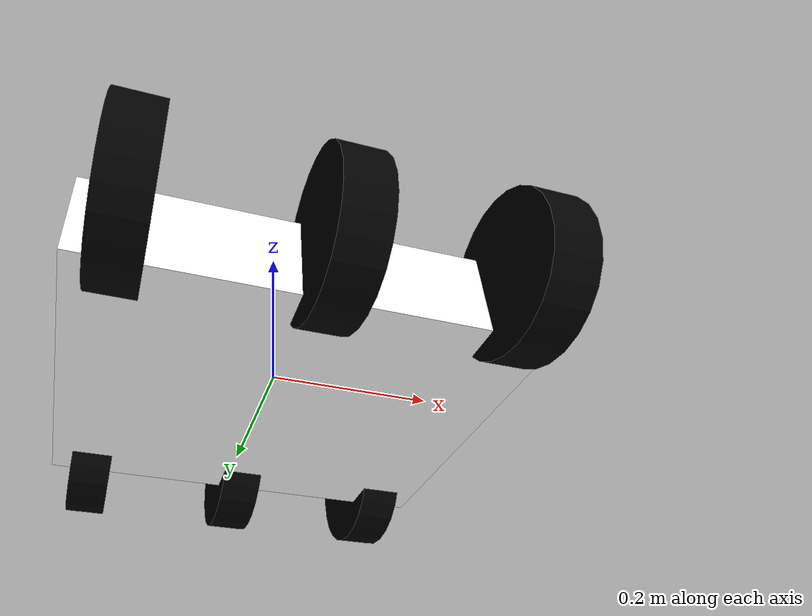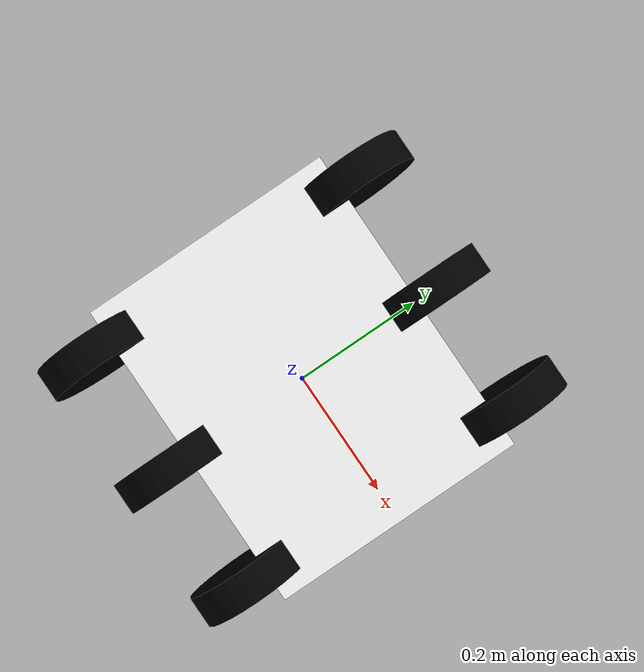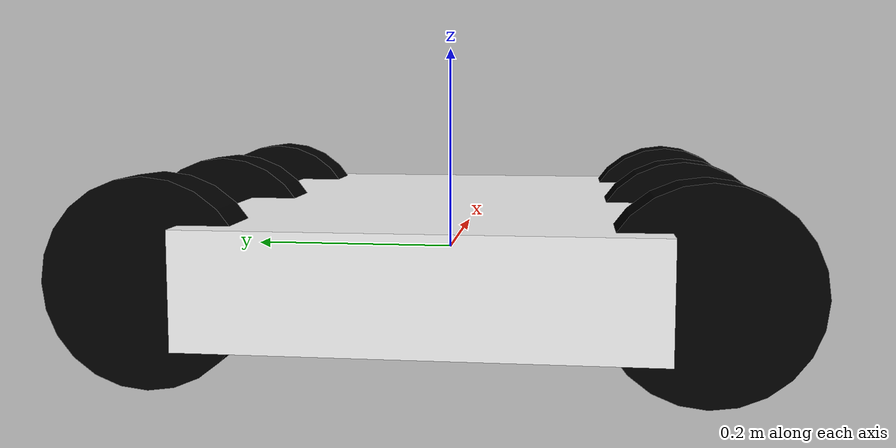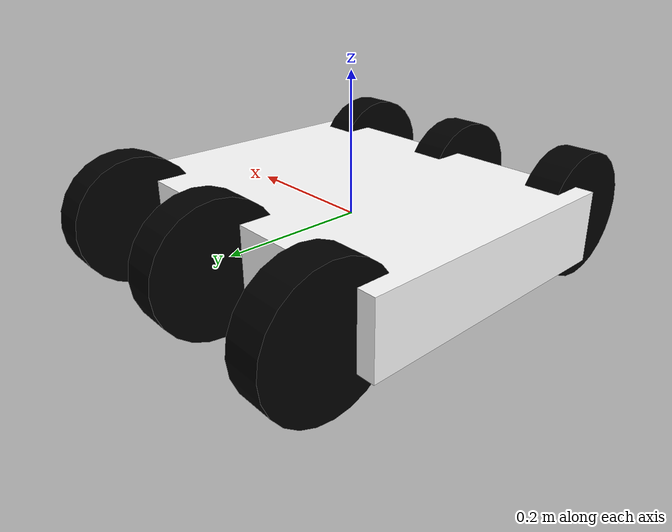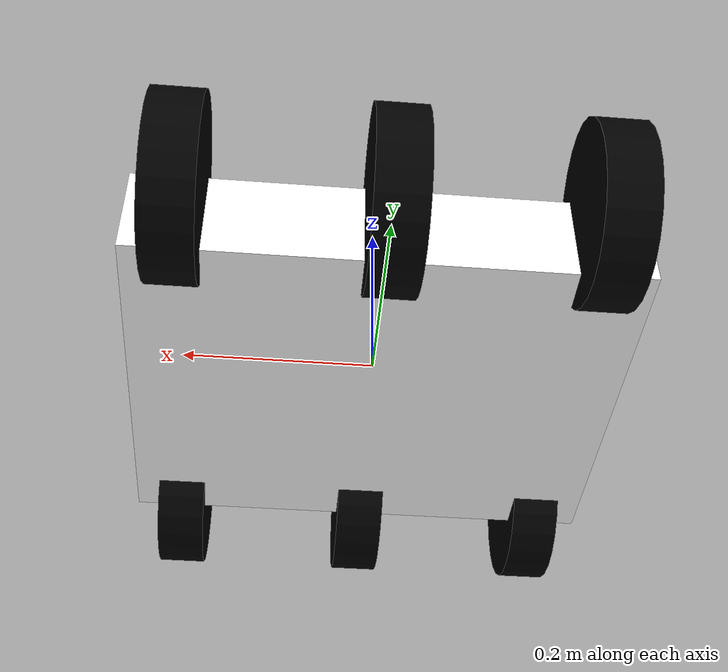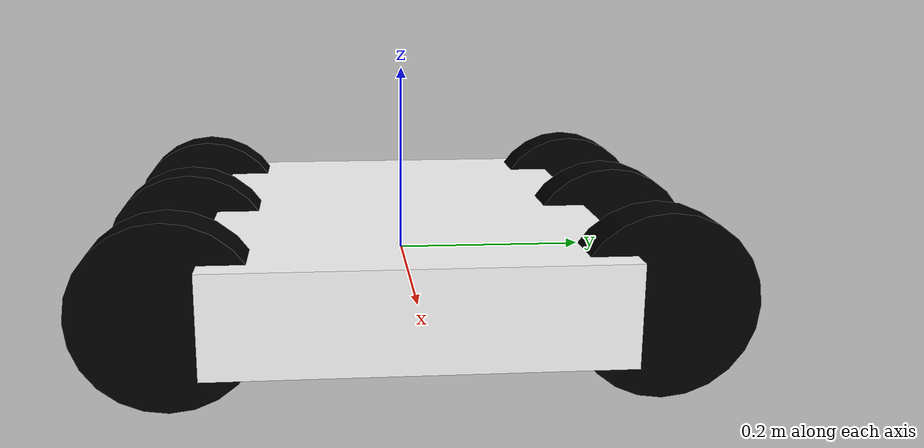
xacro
<?xml version="1.0"?>
<robot xmlns:xacro="http://www.ros.org/wiki/xacro" name="protobot">
    <!-- Includes files to build the robot -->
    <xacro:include filename="Base.urdf.xacro" />
    <xacro:include filename="Wheel.urdf.xacro" />
    <xacro:include filename="material.xacro" />

    <!-- Wheel Origin Values -->
    <xacro:property name="LeftWheelXOrigin" value="-.23"/>
    <xacro:property name="RightWheelXOrigin" value=".23"/>

    <xacro:property name="BackWheelYOrigin" value="-.2"/>
    <xacro:property name="MiddleWheelYOrigin" value="0"/>
    <xacro:property name="FrontWheelYOrigin" value=".2"/>

    <xacro:property name="wheelMass" value="1"/>

    <xacro:property name="baseMass" value="1"/>

    <!-- Base of the robot -->
    <xacro:base name="base" mass="${baseMass}"/>

    <!-- Left Side of the wheels -->
    <xacro:wheel name="wheel_Left_Front"  mass="${wheelMass}" parentLink="base_link" WheelXOrigin="${FrontWheelYOrigin}" WheelYOrigin="${LeftWheelXOrigin}"/>
    <xacro:wheel name="wheel_Left_Middle" mass="${wheelMass}" parentLink="base_link" WheelXOrigin="${MiddleWheelYOrigin}" WheelYOrigin="${LeftWheelXOrigin}"/>
    <xacro:wheel name="wheel_Left_Back" mass="${wheelMass}" parentLink="base_link" WheelXOrigin="${BackWheelYOrigin}" WheelYOrigin="${LeftWheelXOrigin}"/>

    <!-- Right Side of the wheels -->
    <xacro:wheel name="wheel_Right_Front" mass="${wheelMass}" parentLink="base_link" WheelXOrigin="${FrontWheelYOrigin}" WheelYOrigin="${RightWheelXOrigin}"/>
    <xacro:wheel name="wheel_Right_Middle" mass="${wheelMass}" parentLink="base_link" WheelXOrigin="${MiddleWheelYOrigin}" WheelYOrigin="${RightWheelXOrigin}"/>
    <xacro:wheel name="wheel_Right_Back" mass="${wheelMass}" parentLink="base_link" WheelXOrigin="${BackWheelYOrigin}" WheelYOrigin="${RightWheelXOrigin}"/>

    <!-- Gazebo code for protobot -->
    <gazebo>
        <plugin filename="libgazebo_ros_control.so" name="gazebo_ros_control">
        </plugin>
    </gazebo>
    <gazebo>
        <plugin name="gazebo_ros_joint_state_publisher"
            filename="libgazebo_ros_joint_state_publisher.so">
            <update_rate>20</update_rate>
            <joint_name>wheel_Left_Front_joint</joint_name>
            <joint_name>wheel_Left_Middle_joint</joint_name>
            <joint_name>wheel_Left_Back_joint</joint_name>
            <joint_name>wheel_Right_Front_joint</joint_name>
            <joint_name>wheel_Right_Middle_joint</joint_name>
            <joint_name>wheel_Right_Back_joint</joint_name>
        </plugin>
    </gazebo>
    <gazebo>
        <plugin name="gazebo_ros_joint_pose_trajectory"
            filename="libgazebo_ros_joint_pose_trajectory.so">
            <update_rate>2</update_rate>
        </plugin>
    </gazebo>

</robot>

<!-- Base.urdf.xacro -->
<robot xmlns:xacro="http://www.ros.org/wiki/xacro" name="base">
    <!-- This is values for the base of the robot -->
    <xacro:property name="baseLength" value="0.5" />
    <xacro:property name="baseWidth" value="0.4" />
    <xacro:property name="baseHeight" value="0.1" />

    <xacro:property name="originBaseX" value="0" />
    <xacro:property name="originBaseY" value="0" />
    <xacro:property name="originBaseZ" value="0" />

    <xacro:property name="baseColor" value="White" />

    <xacro:macro name="base" params="name mass">
        <link name="${name}_link">
            <visual>
                <origin xyz="${originBaseX} ${originBaseY} ${originBaseZ}" rpy="0 0 0"/>
                <geometry>
                    <box size="${baseLength} ${baseWidth} ${baseHeight}" />
                </geometry>
                <material name="${baseColor}"/>
            </visual>
            <collision>
                <origin xyz="${originBaseX} ${originBaseY} ${originBaseZ}" rpy="0 0 0"/>
                <geometry>
                    <box size="${baseLength} ${baseWidth} ${baseHeight}" />
                </geometry>
            </collision>
            <inertial>
                <mass value="${mass}"/>
                <inertia  ixx="${mass*(baseLength*baseLength+baseHeight*baseHeight)/12}" ixy = "0" ixz = "0"
                iyy="${mass*(baseWidth*baseWidth+baseHeight*baseHeight)/12}" iyz = "0"
                izz="${mass*(baseWidth*baseWidth+baseHeight*baseHeight)/12}"/>
            </inertial>
        </link>

        <!-- Commands for the Base in Gazebo-->

        <gazebo reference="${name}_link">
            <material>Gazebo/White</material>
        </gazebo>
    </xacro:macro>
</robot>

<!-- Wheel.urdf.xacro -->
<robot xmlns:xacro="http://www.ros.org/wiki/xacro" name="wheel">

    <!-- This is values for the Wheels of the robot -->
    <xacro:property name="wheelLength" value="0.05" />
    <xacro:property name="wheelRadius" value="0.09" />

    <xacro:property name="originWheelX" value="0"/>
    <xacro:property name="originWheelY" value="0"/>
    <xacro:property name="originWheelZ" value="0"/>

    <xacro:property name="wheelColor" value="Black" />

    <xacro:macro name="wheel" params="name parentLink mass WheelXOrigin WheelYOrigin">
        <link name="${name}_link">
            <visual>
                <origin xyz="${originWheelX} ${originWheelY} ${originWheelZ}" rpy="0 ${pi/2} 0"/>
                <geometry>
                    <cylinder length="${wheelLength}" radius="${wheelRadius}"/>
                </geometry>
                <material name="${wheelColor}"/>
            </visual>
            <collision>
                <origin xyz="${originWheelX} ${originWheelY} ${originWheelZ}" rpy="0 ${pi/2} 0"/>
                <geometry>
                    <cylinder length="${wheelLength}" radius="${wheelRadius}"/>
                </geometry>
            </collision>
            <inertial>
                <mass value="${mass}"/>
                <inertia    ixx="${mass*(3*wheelRadius*wheelRadius+wheelLength*wheelLength)/12}" ixy = "0" ixz = "0"
                iyy="${mass*(3*wheelRadius*wheelRadius+wheelLength*wheelLength)/12}" iyz = "0"
                izz="${mass*wheelRadius*wheelRadius/2}"/>
            </inertial>
        </link>

        <joint name="${name}_joint" type="continuous">
            <origin xyz="${WheelXOrigin} ${WheelYOrigin} 0" rpy="0 0 0"/>
            <parent link="${parentLink}"/>
            <child link="${name}_link"/>
            <axis xyz="0 1 0" />
        </joint>

        <transmission name="${name}_trans">
            <type>transmission_interface/SimpleTransmission</type>
            <actuator name="motor1">
            <mechanicalReduction>1</mechanicalReduction>
            </actuator>
            <joint name="${name}_joint">
            <hardwareInterface>hardware_interface/VelocityJointInterface</hardwareInterface>
            </joint>
        </transmission>

        <!-- Commands for the Wheel in Gazebo-->

        <gazebo reference="${name}_link">
            <material>Gazebo/Black</material>
        </gazebo>
    </xacro:macro>
</robot>

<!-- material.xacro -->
<robot xmlns:xacro="http://www.ros.org/wiki/xacro">

    <material name="White">
        <color rgba="1 1 1 1"/>
    </material>

    <material name="Black">
        <color rgba="0 0 0 1"/>
    </material>

    <material name="Red">
        <color rgba="1 0 0 1"/>
    </material>

</robot>
